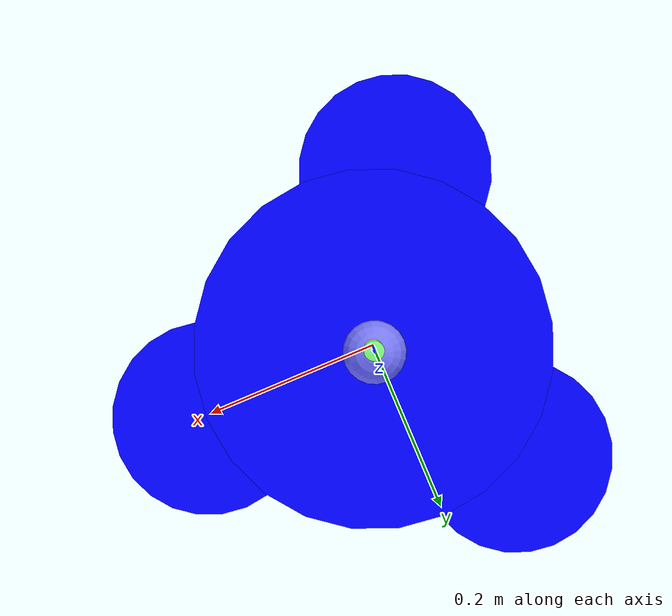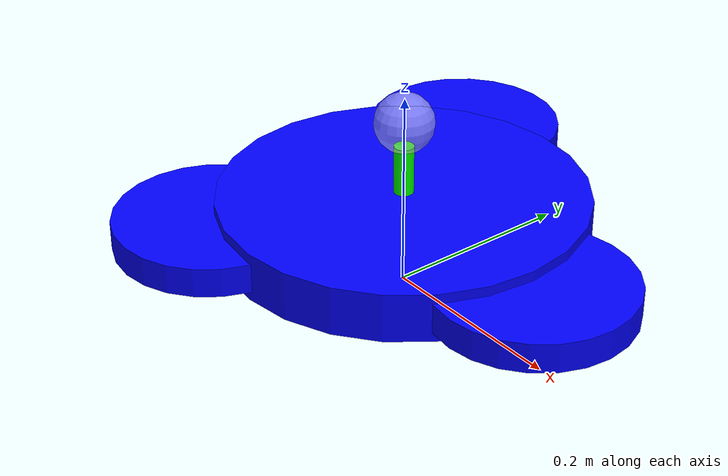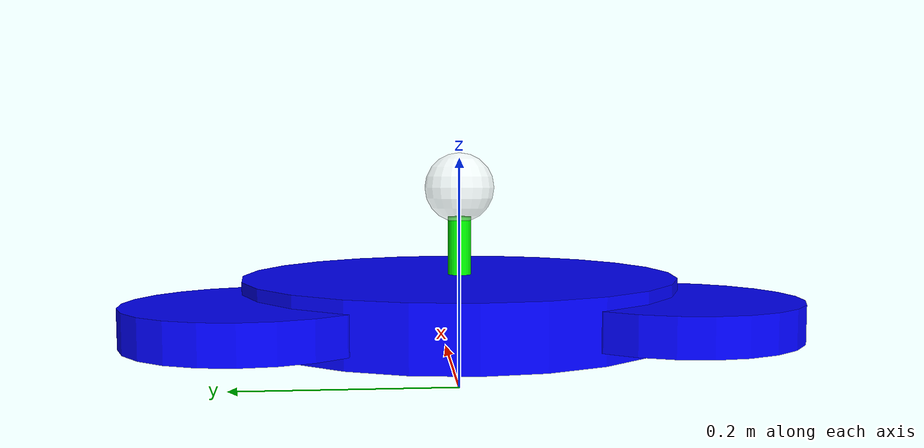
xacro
<?xml version="1.0"?>
<robot xmlns:xacro="http://ros.org/wiki/xacro" name="car">
    <xacro:include filename="base.urdf.xacro"/>
    <xacro:include filename="sensor/scan.urdf.xacro"/>
    <xacro:include filename="sensor/imu.urdf.xacro"/>
    <xacro:include filename="wheel/wheel.urdf.xacro"/>

    <xacro:base_xacro length="0.05" radius="0.185"/>
    <xacro:scan scan_name="livox_frame"/>
    <xacro:imu imu_name="gyro_link"/>
    <xacro:wheel wheel_name="wheel_1" xyz="0.185 0.0 0.0" axis_xyz="1.0 0.0 0.0" rpy="0.0 1.57079 0.0"/>
    <xacro:wheel wheel_name="wheel_2" xyz="-0.0925 0.16021 0.0" axis_xyz="0.5 -0.86603 0.0" rpy="0.0 1.57079 2.09440"/>
    <xacro:wheel wheel_name="wheel_3" xyz="-0.0925 -0.16021 0.0" axis_xyz="0.5 0.86603 0.0" rpy="0.0 1.57079 1.04720"/>
</robot>

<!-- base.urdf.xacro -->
<robot xmlns:xacro="http://ros.org/wiki/xacro">
    <xacro:include filename="yuan.urdf.xacro"/>

    <xacro:macro name="base_xacro" params="length radius">
        <link name="base_footprint"/>

        <link name="base_link">
            <xacro:cylinder_visual r="${radius}" h="${length}"/>
            <xacro:cylinder_collision r="${radius/2}" h="${length}"/>
            <xacro:cylinder_inertia m="1.0" r="${radius/2}" h="${length}"/>
        </link>

        <joint name="joint_first" type="fixed">
            <parent link="base_footprint"/>
            <child link="base_link"/>
            <origin xyz="0.0 0.0 0.075" rpy="0.0 0.0 0.0"/>
        </joint>
    </xacro:macro>
</robot>

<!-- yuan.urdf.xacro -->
<robot xmlns:xacro="http://ros.org/wiki/xacro">
    <!-- 视觉 -->
    <!-- 方形 -->
    <xacro:macro name="box_visual" params="x y z">
        <visual>
            <origin xyz="0.0 0.0 0.0" rpy="0.0 0.0 0.0"/>
            <geometry>
                <box size="${x} ${y} ${z}"/>
            </geometry>
            <material name="white">
                <color rgba="1.0 1.0 1.0 0.5"/>
            </material>
        </visual>
    </xacro:macro>
    <!-- 圆柱 -->
    <xacro:macro name="cylinder_visual" params="r h">
        <visual>
            <origin xyz="0.0 0.0 0.0" rpy="0.0 0.0 0.0"/>
            <geometry>
                <cylinder radius="${r}" length="${h}"/>
            </geometry>
            <material name="blue">
                <color rgba="0.0 0.0 1.0 1.0"/>
            </material>
        </visual>
    </xacro:macro>
    <xacro:macro name="sphere_visual" params="r">
        <visual>
            <origin xyz="0.0 0.0 0.0" rpy="0.0 0.0 0.0"/>
            <geometry>
                <sphere radius="${r}"/>
            </geometry>
            <material name="white">
                <color rgba="1.0 1.0 1.0 0.5"/>
            </material>
        </visual>
    </xacro:macro>

    <!-- 碰撞 -->
    <!-- 方形 -->
    <xacro:macro name="box_collision" params="x y z">
        <collision>
            <origin xyz="0.0 0.0 0.0" rpy="0.0 0.0 0.0"/>
            <geometry>
                <box size="${x} ${y} ${z}"/>
            </geometry>
        </collision>
    </xacro:macro>
    <!-- 圆柱 -->
    <xacro:macro name="cylinder_collision" params="r h">
        <collision>
            <origin xyz="0.0 0.0 0.0" rpy="0.0 0.0 0.0"/>
            <geometry>
                <cylinder radius="${r}" length="${h}"/>
            </geometry>
        </collision>
    </xacro:macro>
    <xacro:macro name="sphere_collision" params="r">
        <collision>
            <origin xyz="0.0 0.0 0.0" rpy="0.0 0.0 0.0"/>
            <geometry>
                <sphere radius="${r}"/>
            </geometry>
        </collision>
    </xacro:macro>

    <!-- 惯性 -->
    <!-- 方形 -->
    <xacro:macro name="box_inertia" params="m x y z">
        <inertial>
            <origin xyz="0.0 0.0 0.0" rpy="0.0 0.0 0.0"/>
            <mass value="${m}" />
            <inertia ixx="${(m/12) * (y*y + z*z)}" ixy="0.0" ixz="0.0" iyy="${(m/12) * (x*x + z*z)}" iyz="0.0" izz="${(m/12) * (x*x + y*y)}" />
        </inertial>
    </xacro:macro>
    <!-- 圆柱 -->
    <xacro:macro name="cylinder_inertia" params="m r h">
        <inertial>
            <origin xyz="0.0 0.0 0.0" rpy="0.0 0.0 0.0"/>
            <mass value="${m}" />
            <inertia ixx="${(m/12) * (3*r*r + h*h)}" ixy="0" ixz="0" iyy="${(m/12) * (3*r*r + h*h)}" iyz="0" izz="${(m/2) * (r*r)}" />
        </inertial>
    </xacro:macro>
    <xacro:macro name="sphere_inertia" params="m r">
        <inertial>
            <origin xyz="0.0 0.0 0.0" rpy="0.0 0.0 0.0"/>
            <mass value="${m}" />
            <inertia ixx="${(2/5) * m * (r*r)}" ixy="0.0" ixz="0.0" iyy="${(2/5) * m * (r*r)}" iyz="0.0" izz="${(2/5) * m * (r*r)}" />
        </inertial>
    </xacro:macro>

</robot>

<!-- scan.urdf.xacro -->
<robot xmlns:xacro="http://ros.org/wiki/xacro">
    <xacro:include filename="../yuan.urdf.xacro"/>

    <xacro:macro name="scan" params="scan_name">
        <link name="${scan_name}">
            <xacro:sphere_visual r="0.03"/>
            <xacro:sphere_collision r="0.03"/>
        </link>

        <link name="${scan_name}_platform">
            <visual>
                <origin xyz="0.0 0.0 0.0"/>
                <geometry>
                    <cylinder radius="0.01" length="0.05"/>
                </geometry>
                <material name="green">
                    <color rgba="0.0 1.0 0.0 1.0"/>
                </material>
            </visual>
            <xacro:cylinder_collision r="0.01" h="0.01"/>
        </link>

        <joint name="${scan_name}_platform_joint" type="fixed">
            <parent link="base_link"/>
            <child link="${scan_name}_platform"/>
            <origin xyz="0.0 0.0 0.05" rpy="0.0 0.0 0.0"/>
        </joint>

        <joint name="${scan_name}_joint" type="fixed">
            <parent link="${scan_name}_platform"/>
            <child link="${scan_name}"/>
            <origin xyz="0.0 0.0 0.05" rpy="0.0 0.0 0.0"/>
        </joint>
    </xacro:macro>
</robot>

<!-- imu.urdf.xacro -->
<robot xmlns:xacro="http://ros.org/wiki/xacro">
    <xacro:include filename="../yuan.urdf.xacro"/>

    <xacro:macro name="imu" params="imu_name">
        <link name="${imu_name}">
            <visual>
                <origin xyz="0.0 0.0 0.0"/>
                <geometry>
                    <box size="0.03 0.03 0.03"/>
                </geometry>
                <material name="red">
                    <color rgba="1.0 0.0 0.0 1.0"/>
                </material>
            </visual>
            <xacro:box_collision x="0.03" y="0.03" z="0.03"/>
        </link>

        <joint name="${imu_name}_joint" type="fixed">
            <parent link="base_link"/>
            <child link="${imu_name}"/>
            <origin xyz="0.0 0.0 0.0" rpy="0.0 0.0 0.0"/>
        </joint>
    </xacro:macro>
</robot>

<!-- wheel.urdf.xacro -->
<robot xmlns:xacro="http://ros.org/wiki/xacro">
    <xacro:include filename="../yuan.urdf.xacro"/>

    <xacro:macro name="wheel" params="wheel_name xyz axis_xyz rpy:='0 0.0 0.0'">
        <link name="${wheel_name}_link">
            <xacro:cylinder_visual r="0.1" h="0.03" rpy="${rpy}"/>
            <xacro:cylinder_collision r="0.1" h="0.03" rpy="${rpy}"/>
        </link>

        <joint name="${wheel_name}_joint" type="continuous">
            <parent link="base_link"/>
            <child link="${wheel_name}_link"/>
            <origin xyz="${xyz}" rpy="0.0 0.0 0.0"/>
            <axis xyz="${axis_xyz}"/>
        </joint>
    </xacro:macro>
</robot>
